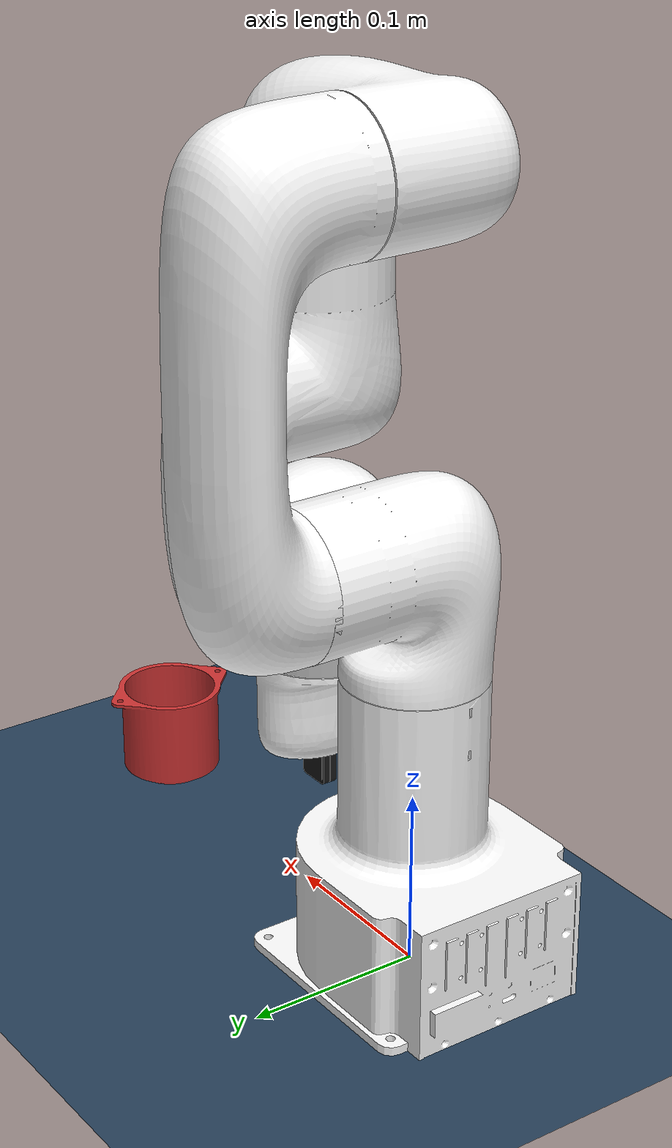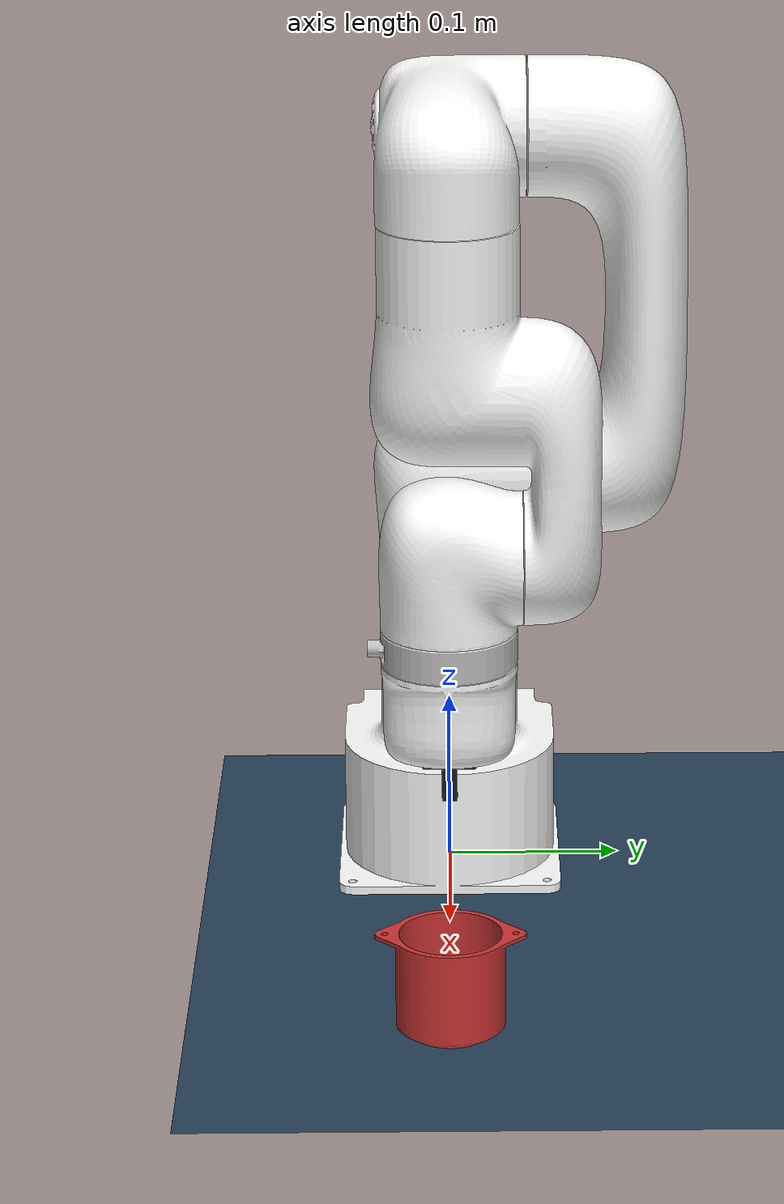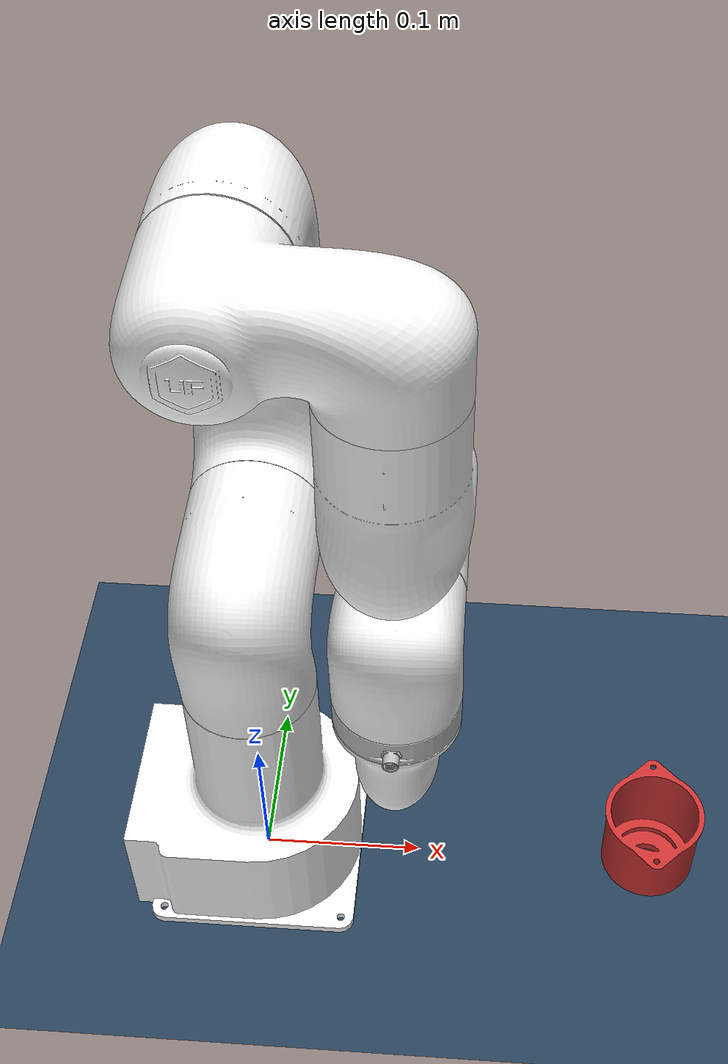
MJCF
<mujoco model="lite6 scene">
  <include file="lite6_gripper_narrow.xml"/>

  <statistic center="0 0 0.3" extent="0.6"/>

  <visual>
    <headlight diffuse="0.6 0.6 0.6" ambient="0.3 0.3 0.3" specular="0 0 0"/>
    <rgba haze="0.15 0.25 0.35 1"/>
    <global azimuth="120" elevation="-20"/>
  </visual>

  <asset>
    <texture type="skybox" builtin="gradient" rgb1="0.3 0.5 0.7" rgb2="0 0 0" width="512" height="3072"/>
    <texture type="2d" name="groundplane" builtin="checker" mark="edge" rgb1="0.2 0.3 0.4" rgb2="0.1 0.2 0.3"
             markrgb="0.8 0.8 0.8" width="300" height="300"/>
    <material name="groundplane" texture="groundplane" texuniform="true" texrepeat="5 5" reflectance="0.2"/>

    <mesh name="object_mesh_visual" file="/home/nikola/code/alignit/alignit/mujoco_menagerie/ufactory_lite6/assets/StatorSimplified.stl" scale="0.001 0.001 0.001" />
    <material name="object_material" rgba="0.8 0.2 0.2 1"/>

    <mesh name="stator_collision_part_000" file="/home/nikola/code/alignit/alignit/mujoco_menagerie/ufactory_lite6/assets/collision_parts/stator/stator_part_000.stl" scale="0.001 0.001 0.001"/>
    <mesh name="stator_collision_part_001" file="/home/nikola/code/alignit/alignit/mujoco_menagerie/ufactory_lite6/assets/collision_parts/stator/stator_part_001.stl" scale="0.001 0.001 0.001"/>
    <mesh name="stator_collision_part_002" file="/home/nikola/code/alignit/alignit/mujoco_menagerie/ufactory_lite6/assets/collision_parts/stator/stator_part_002.stl" scale="0.001 0.001 0.001"/>
    <mesh name="stator_collision_part_003" file="/home/nikola/code/alignit/alignit/mujoco_menagerie/ufactory_lite6/assets/collision_parts/stator/stator_part_003.stl" scale="0.001 0.001 0.001"/>
    <mesh name="stator_collision_part_004" file="/home/nikola/code/alignit/alignit/mujoco_menagerie/ufactory_lite6/assets/collision_parts/stator/stator_part_004.stl" scale="0.001 0.001 0.001"/>
    <mesh name="stator_collision_part_005" file="/home/nikola/code/alignit/alignit/mujoco_menagerie/ufactory_lite6/assets/collision_parts/stator/stator_part_005.stl" scale="0.001 0.001 0.001"/>
    <mesh name="stator_collision_part_006" file="/home/nikola/code/alignit/alignit/mujoco_menagerie/ufactory_lite6/assets/collision_parts/stator/stator_part_006.stl" scale="0.001 0.001 0.001"/>
    <mesh name="stator_collision_part_007" file="/home/nikola/code/alignit/alignit/mujoco_menagerie/ufactory_lite6/assets/collision_parts/stator/stator_part_007.stl" scale="0.001 0.001 0.001"/>
    <mesh name="stator_collision_part_008" file="/home/nikola/code/alignit/alignit/mujoco_menagerie/ufactory_lite6/assets/collision_parts/stator/stator_part_008.stl" scale="0.001 0.001 0.001"/>
    <mesh name="stator_collision_part_009" file="/home/nikola/code/alignit/alignit/mujoco_menagerie/ufactory_lite6/assets/collision_parts/stator/stator_part_009.stl" scale="0.001 0.001 0.001"/>
    <mesh name="stator_collision_part_010" file="/home/nikola/code/alignit/alignit/mujoco_menagerie/ufactory_lite6/assets/collision_parts/stator/stator_part_010.stl" scale="0.001 0.001 0.001"/>
    <mesh name="stator_collision_part_011" file="/home/nikola/code/alignit/alignit/mujoco_menagerie/ufactory_lite6/assets/collision_parts/stator/stator_part_011.stl" scale="0.001 0.001 0.001"/>
    <mesh name="stator_collision_part_012" file="/home/nikola/code/alignit/alignit/mujoco_menagerie/ufactory_lite6/assets/collision_parts/stator/stator_part_012.stl" scale="0.001 0.001 0.001"/>
    <mesh name="stator_collision_part_013" file="/home/nikola/code/alignit/alignit/mujoco_menagerie/ufactory_lite6/assets/collision_parts/stator/stator_part_013.stl" scale="0.001 0.001 0.001"/>
    <mesh name="stator_collision_part_014" file="/home/nikola/code/alignit/alignit/mujoco_menagerie/ufactory_lite6/assets/collision_parts/stator/stator_part_014.stl" scale="0.001 0.001 0.001"/>
    <mesh name="stator_collision_part_015" file="/home/nikola/code/alignit/alignit/mujoco_menagerie/ufactory_lite6/assets/collision_parts/stator/stator_part_015.stl" scale="0.001 0.001 0.001"/>
    <mesh name="stator_collision_part_016" file="/home/nikola/code/alignit/alignit/mujoco_menagerie/ufactory_lite6/assets/collision_parts/stator/stator_part_016.stl" scale="0.001 0.001 0.001"/>
    <mesh name="stator_collision_part_017" file="/home/nikola/code/alignit/alignit/mujoco_menagerie/ufactory_lite6/assets/collision_parts/stator/stator_part_017.stl" scale="0.001 0.001 0.001"/>
    <mesh name="stator_collision_part_018" file="/home/nikola/code/alignit/alignit/mujoco_menagerie/ufactory_lite6/assets/collision_parts/stator/stator_part_018.stl" scale="0.001 0.001 0.001"/>
    <mesh name="stator_collision_part_019" file="/home/nikola/code/alignit/alignit/mujoco_menagerie/ufactory_lite6/assets/collision_parts/stator/stator_part_019.stl" scale="0.001 0.001 0.001"/>
    <mesh name="stator_collision_part_020" file="/home/nikola/code/alignit/alignit/mujoco_menagerie/ufactory_lite6/assets/collision_parts/stator/stator_part_020.stl" scale="0.001 0.001 0.001"/>
    <mesh name="stator_collision_part_021" file="/home/nikola/code/alignit/alignit/mujoco_menagerie/ufactory_lite6/assets/collision_parts/stator/stator_part_021.stl" scale="0.001 0.001 0.001"/>
    <mesh name="stator_collision_part_022" file="/home/nikola/code/alignit/alignit/mujoco_menagerie/ufactory_lite6/assets/collision_parts/stator/stator_part_022.stl" scale="0.001 0.001 0.001"/>
    <mesh name="stator_collision_part_023" file="/home/nikola/code/alignit/alignit/mujoco_menagerie/ufactory_lite6/assets/collision_parts/stator/stator_part_023.stl" scale="0.001 0.001 0.001"/>
    <mesh name="stator_collision_part_024" file="/home/nikola/code/alignit/alignit/mujoco_menagerie/ufactory_lite6/assets/collision_parts/stator/stator_part_024.stl" scale="0.001 0.001 0.001"/>
    <mesh name="stator_collision_part_025" file="/home/nikola/code/alignit/alignit/mujoco_menagerie/ufactory_lite6/assets/collision_parts/stator/stator_part_025.stl" scale="0.001 0.001 0.001"/>
    <mesh name="stator_collision_part_026" file="/home/nikola/code/alignit/alignit/mujoco_menagerie/ufactory_lite6/assets/collision_parts/stator/stator_part_026.stl" scale="0.001 0.001 0.001"/>
    <mesh name="stator_collision_part_027" file="/home/nikola/code/alignit/alignit/mujoco_menagerie/ufactory_lite6/assets/collision_parts/stator/stator_part_027.stl" scale="0.001 0.001 0.001"/>
    <mesh name="stator_collision_part_028" file="/home/nikola/code/alignit/alignit/mujoco_menagerie/ufactory_lite6/assets/collision_parts/stator/stator_part_028.stl" scale="0.001 0.001 0.001"/>
    <mesh name="stator_collision_part_029" file="/home/nikola/code/alignit/alignit/mujoco_menagerie/ufactory_lite6/assets/collision_parts/stator/stator_part_029.stl" scale="0.001 0.001 0.001"/>
    <mesh name="stator_collision_part_030" file="/home/nikola/code/alignit/alignit/mujoco_menagerie/ufactory_lite6/assets/collision_parts/stator/stator_part_030.stl" scale="0.001 0.001 0.001"/>
    <mesh name="stator_collision_part_031" file="/home/nikola/code/alignit/alignit/mujoco_menagerie/ufactory_lite6/assets/collision_parts/stator/stator_part_031.stl" scale="0.001 0.001 0.001"/>
    <mesh name="stator_collision_part_032" file="/home/nikola/code/alignit/alignit/mujoco_menagerie/ufactory_lite6/assets/collision_parts/stator/stator_part_032.stl" scale="0.001 0.001 0.001"/>
    <mesh name="stator_collision_part_033" file="/home/nikola/code/alignit/alignit/mujoco_menagerie/ufactory_lite6/assets/collision_parts/stator/stator_part_033.stl" scale="0.001 0.001 0.001"/>
    <mesh name="stator_collision_part_034" file="/home/nikola/code/alignit/alignit/mujoco_menagerie/ufactory_lite6/assets/collision_parts/stator/stator_part_034.stl" scale="0.001 0.001 0.001"/>
    <mesh name="stator_collision_part_035" file="/home/nikola/code/alignit/alignit/mujoco_menagerie/ufactory_lite6/assets/collision_parts/stator/stator_part_035.stl" scale="0.001 0.001 0.001"/>
    <mesh name="stator_collision_part_036" file="/home/nikola/code/alignit/alignit/mujoco_menagerie/ufactory_lite6/assets/collision_parts/stator/stator_part_036.stl" scale="0.001 0.001 0.001"/>
    <mesh name="stator_collision_part_037" file="/home/nikola/code/alignit/alignit/mujoco_menagerie/ufactory_lite6/assets/collision_parts/stator/stator_part_037.stl" scale="0.001 0.001 0.001"/>
    <mesh name="stator_collision_part_038" file="/home/nikola/code/alignit/alignit/mujoco_menagerie/ufactory_lite6/assets/collision_parts/stator/stator_part_038.stl" scale="0.001 0.001 0.001"/>
    <mesh name="stator_collision_part_039" file="/home/nikola/code/alignit/alignit/mujoco_menagerie/ufactory_lite6/assets/collision_parts/stator/stator_part_039.stl" scale="0.001 0.001 0.001"/>
    <mesh name="stator_collision_part_040" file="/home/nikola/code/alignit/alignit/mujoco_menagerie/ufactory_lite6/assets/collision_parts/stator/stator_part_040.stl" scale="0.001 0.001 0.001"/>
    <mesh name="stator_collision_part_041" file="/home/nikola/code/alignit/alignit/mujoco_menagerie/ufactory_lite6/assets/collision_parts/stator/stator_part_041.stl" scale="0.001 0.001 0.001"/>
    <mesh name="stator_collision_part_042" file="/home/nikola/code/alignit/alignit/mujoco_menagerie/ufactory_lite6/assets/collision_parts/stator/stator_part_042.stl" scale="0.001 0.001 0.001"/>
    <mesh name="stator_collision_part_043" file="/home/nikola/code/alignit/alignit/mujoco_menagerie/ufactory_lite6/assets/collision_parts/stator/stator_part_043.stl" scale="0.001 0.001 0.001"/>
    <mesh name="stator_collision_part_044" file="/home/nikola/code/alignit/alignit/mujoco_menagerie/ufactory_lite6/assets/collision_parts/stator/stator_part_044.stl" scale="0.001 0.001 0.001"/>
    <mesh name="stator_collision_part_045" file="/home/nikola/code/alignit/alignit/mujoco_menagerie/ufactory_lite6/assets/collision_parts/stator/stator_part_045.stl" scale="0.001 0.001 0.001"/>
    <mesh name="stator_collision_part_046" file="/home/nikola/code/alignit/alignit/mujoco_menagerie/ufactory_lite6/assets/collision_parts/stator/stator_part_046.stl" scale="0.001 0.001 0.001"/>
    <mesh name="stator_collision_part_047" file="/home/nikola/code/alignit/alignit/mujoco_menagerie/ufactory_lite6/assets/collision_parts/stator/stator_part_047.stl" scale="0.001 0.001 0.001"/>
    <mesh name="stator_collision_part_048" file="/home/nikola/code/alignit/alignit/mujoco_menagerie/ufactory_lite6/assets/collision_parts/stator/stator_part_048.stl" scale="0.001 0.001 0.001"/>
    <mesh name="stator_collision_part_049" file="/home/nikola/code/alignit/alignit/mujoco_menagerie/ufactory_lite6/assets/collision_parts/stator/stator_part_049.stl" scale="0.001 0.001 0.001"/>
    <mesh name="stator_collision_part_050" file="/home/nikola/code/alignit/alignit/mujoco_menagerie/ufactory_lite6/assets/collision_parts/stator/stator_part_050.stl" scale="0.001 0.001 0.001"/>
    <mesh name="stator_collision_part_051" file="/home/nikola/code/alignit/alignit/mujoco_menagerie/ufactory_lite6/assets/collision_parts/stator/stator_part_051.stl" scale="0.001 0.001 0.001"/>
    <mesh name="stator_collision_part_052" file="/home/nikola/code/alignit/alignit/mujoco_menagerie/ufactory_lite6/assets/collision_parts/stator/stator_part_052.stl" scale="0.001 0.001 0.001"/>
    <mesh name="stator_collision_part_053" file="/home/nikola/code/alignit/alignit/mujoco_menagerie/ufactory_lite6/assets/collision_parts/stator/stator_part_053.stl" scale="0.001 0.001 0.001"/>
    <mesh name="stator_collision_part_054" file="/home/nikola/code/alignit/alignit/mujoco_menagerie/ufactory_lite6/assets/collision_parts/stator/stator_part_054.stl" scale="0.001 0.001 0.001"/>
    <mesh name="stator_collision_part_055" file="/home/nikola/code/alignit/alignit/mujoco_menagerie/ufactory_lite6/assets/collision_parts/stator/stator_part_055.stl" scale="0.001 0.001 0.001"/>
    <mesh name="stator_collision_part_056" file="/home/nikola/code/alignit/alignit/mujoco_menagerie/ufactory_lite6/assets/collision_parts/stator/stator_part_056.stl" scale="0.001 0.001 0.001"/>
    <mesh name="stator_collision_part_057" file="/home/nikola/code/alignit/alignit/mujoco_menagerie/ufactory_lite6/assets/collision_parts/stator/stator_part_057.stl" scale="0.001 0.001 0.001"/>
    <mesh name="stator_collision_part_058" file="/home/nikola/code/alignit/alignit/mujoco_menagerie/ufactory_lite6/assets/collision_parts/stator/stator_part_058.stl" scale="0.001 0.001 0.001"/>
    <mesh name="stator_collision_part_059" file="/home/nikola/code/alignit/alignit/mujoco_menagerie/ufactory_lite6/assets/collision_parts/stator/stator_part_059.stl" scale="0.001 0.001 0.001"/>
    <mesh name="stator_collision_part_060" file="/home/nikola/code/alignit/alignit/mujoco_menagerie/ufactory_lite6/assets/collision_parts/stator/stator_part_060.stl" scale="0.001 0.001 0.001"/>
    <mesh name="stator_collision_part_061" file="/home/nikola/code/alignit/alignit/mujoco_menagerie/ufactory_lite6/assets/collision_parts/stator/stator_part_061.stl" scale="0.001 0.001 0.001"/>
    <mesh name="stator_collision_part_062" file="/home/nikola/code/alignit/alignit/mujoco_menagerie/ufactory_lite6/assets/collision_parts/stator/stator_part_062.stl" scale="0.001 0.001 0.001"/>
    <mesh name="stator_collision_part_063" file="/home/nikola/code/alignit/alignit/mujoco_menagerie/ufactory_lite6/assets/collision_parts/stator/stator_part_063.stl" scale="0.001 0.001 0.001"/>
    <mesh name="stator_collision_part_064" file="/home/nikola/code/alignit/alignit/mujoco_menagerie/ufactory_lite6/assets/collision_parts/stator/stator_part_064.stl" scale="0.001 0.001 0.001"/>
    <mesh name="stator_collision_part_065" file="/home/nikola/code/alignit/alignit/mujoco_menagerie/ufactory_lite6/assets/collision_parts/stator/stator_part_065.stl" scale="0.001 0.001 0.001"/>
    <mesh name="stator_collision_part_066" file="/home/nikola/code/alignit/alignit/mujoco_menagerie/ufactory_lite6/assets/collision_parts/stator/stator_part_066.stl" scale="0.001 0.001 0.001"/>
    <mesh name="stator_collision_part_067" file="/home/nikola/code/alignit/alignit/mujoco_menagerie/ufactory_lite6/assets/collision_parts/stator/stator_part_067.stl" scale="0.001 0.001 0.001"/>
    <mesh name="stator_collision_part_068" file="/home/nikola/code/alignit/alignit/mujoco_menagerie/ufactory_lite6/assets/collision_parts/stator/stator_part_068.stl" scale="0.001 0.001 0.001"/>
    <mesh name="stator_collision_part_069" file="/home/nikola/code/alignit/alignit/mujoco_menagerie/ufactory_lite6/assets/collision_parts/stator/stator_part_069.stl" scale="0.001 0.001 0.001"/>
    <mesh name="stator_collision_part_070" file="/home/nikola/code/alignit/alignit/mujoco_menagerie/ufactory_lite6/assets/collision_parts/stator/stator_part_070.stl" scale="0.001 0.001 0.001"/>
    <mesh name="stator_collision_part_071" file="/home/nikola/code/alignit/alignit/mujoco_menagerie/ufactory_lite6/assets/collision_parts/stator/stator_part_071.stl" scale="0.001 0.001 0.001"/>
    <mesh name="stator_collision_part_072" file="/home/nikola/code/alignit/alignit/mujoco_menagerie/ufactory_lite6/assets/collision_parts/stator/stator_part_072.stl" scale="0.001 0.001 0.001"/>
    <mesh name="stator_collision_part_073" file="/home/nikola/code/alignit/alignit/mujoco_menagerie/ufactory_lite6/assets/collision_parts/stator/stator_part_073.stl" scale="0.001 0.001 0.001"/>
    <mesh name="stator_collision_part_074" file="/home/nikola/code/alignit/alignit/mujoco_menagerie/ufactory_lite6/assets/collision_parts/stator/stator_part_074.stl" scale="0.001 0.001 0.001"/>
    <mesh name="stator_collision_part_075" file="/home/nikola/code/alignit/alignit/mujoco_menagerie/ufactory_lite6/assets/collision_parts/stator/stator_part_075.stl" scale="0.001 0.001 0.001"/>
    <mesh name="stator_collision_part_076" file="/home/nikola/code/alignit/alignit/mujoco_menagerie/ufactory_lite6/assets/collision_parts/stator/stator_part_076.stl" scale="0.001 0.001 0.001"/>
    <mesh name="stator_collision_part_077" file="/home/nikola/code/alignit/alignit/mujoco_menagerie/ufactory_lite6/assets/collision_parts/stator/stator_part_077.stl" scale="0.001 0.001 0.001"/>

  </asset>

  <worldbody>
    <light pos="0 0 1.5" dir="0 0 -1" directional="true"/>
    <geom name="floor" size="0 0 0.05" type="plane" material="groundplane"/>

    <body name="pickup_object" pos="0.250 0 0.06" euler="3.14 0 0">
      <joint type="free"/>
      <inertial pos="0 0 0" mass="0.5" diaginertia="0.001 0.001 0.001"/>

      <geom name="object_visual" type="mesh" mesh="object_mesh_visual" material="object_material"
            contype="0" conaffinity="0" group="2"/>

      <geom name="object_collision_part_000" type="mesh" mesh="stator_collision_part_000"
            contype="1" conaffinity="1" group="3" solimp="0.9 0.95 0.001" solref="0.02 0"
            friction="0.7 0.3 0.1" margin="0.001" mass="0"/>
      <geom name="object_collision_part_001" type="mesh" mesh="stator_collision_part_001"
            contype="1" conaffinity="1" group="3" solimp="0.9 0.95 0.001" solref="0.02 0"
            friction="0.7 0.3 0.1" margin="0.001" mass="0"/>
      <geom name="object_collision_part_002" type="mesh" mesh="stator_collision_part_002"
            contype="1" conaffinity="1" group="3" solimp="0.9 0.95 0.001" solref="0.02 0"
            friction="0.7 0.3 0.1" margin="0.001" mass="0"/>
      <geom name="object_collision_part_003" type="mesh" mesh="stator_collision_part_003"
            contype="1" conaffinity="1" group="3" solimp="0.9 0.95 0.001" solref="0.02 0"
            friction="0.7 0.3 0.1" margin="0.001" mass="0"/>
      <geom name="object_collision_part_004" type="mesh" mesh="stator_collision_part_004"
            contype="1" conaffinity="1" group="3" solimp="0.9 0.95 0.001" solref="0.02 0"
            friction="0.7 0.3 0.1" margin="0.001" mass="0"/>
      <geom name="object_collision_part_005" type="mesh" mesh="stator_collision_part_005"
            contype="1" conaffinity="1" group="3" solimp="0.9 0.95 0.001" solref="0.02 0"
            friction="0.7 0.3 0.1" margin="0.001" mass="0"/>
      <geom name="object_collision_part_006" type="mesh" mesh="stator_collision_part_006"
            contype="1" conaffinity="1" group="3" solimp="0.9 0.95 0.001" solref="0.02 0"
            friction="0.7 0.3 0.1" margin="0.001" mass="0"/>
      <geom name="object_collision_part_007" type="mesh" mesh="stator_collision_part_007"
            contype="1" conaffinity="1" group="3" solimp="0.9 0.95 0.001" solref="0.02 0"
            friction="0.7 0.3 0.1" margin="0.001" mass="0"/>
      <geom name="object_collision_part_008" type="mesh" mesh="stator_collision_part_008"
            contype="1" conaffinity="1" group="3" solimp="0.9 0.95 0.001" solref="0.02 0"
            friction="0.7 0.3 0.1" margin="0.001" mass="0"/>
      <geom name="object_collision_part_009" type="mesh" mesh="stator_collision_part_009"
            contype="1" conaffinity="1" group="3" solimp="0.9 0.95 0.001" solref="0.02 0"
            friction="0.7 0.3 0.1" margin="0.001" mass="0"/>
      <geom name="object_collision_part_010" type="mesh" mesh="stator_collision_part_010"
            contype="1" conaffinity="1" group="3" solimp="0.9 0.95 0.001" solref="0.02 0"
            friction="0.7 0.3 0.1" margin="0.001" mass="0"/>
      <geom name="object_collision_part_011" type="mesh" mesh="stator_collision_part_011"
            contype="1" conaffinity="1" group="3" solimp="0.9 0.95 0.001" solref="0.02 0"
            friction="0.7 0.3 0.1" margin="0.001" mass="0"/>
      <geom name="object_collision_part_012" type="mesh" mesh="stator_collision_part_012"
            contype="1" conaffinity="1" group="3" solimp="0.9 0.95 0.001" solref="0.02 0"
            friction="0.7 0.3 0.1" margin="0.001" mass="0"/>
      <geom name="object_collision_part_013" type="mesh" mesh="stator_collision_part_013"
            contype="1" conaffinity="1" group="3" solimp="0.9 0.95 0.001" solref="0.02 0"
            friction="0.7 0.3 0.1" margin="0.001" mass="0"/>
      <geom name="object_collision_part_014" type="mesh" mesh="stator_collision_part_014"
            contype="1" conaffinity="1" group="3" solimp="0.9 0.95 0.001" solref="0.02 0"
            friction="0.7 0.3 0.1" margin="0.001" mass="0"/>
      <geom name="object_collision_part_015" type="mesh" mesh="stator_collision_part_015"
            contype="1" conaffinity="1" group="3" solimp="0.9 0.95 0.001" solref="0.02 0"
            friction="0.7 0.3 0.1" margin="0.001" mass="0"/>
      <geom name="object_collision_part_016" type="mesh" mesh="stator_collision_part_016"
            contype="1" conaffinity="1" group="3" solimp="0.9 0.95 0.001" solref="0.02 0"
            friction="0.7 0.3 0.1" margin="0.001" mass="0"/>
      <geom name="object_collision_part_017" type="mesh" mesh="stator_collision_part_017"
            contype="1" conaffinity="1" group="3" solimp="0.9 0.95 0.001" solref="0.02 0"
            friction="0.7 0.3 0.1" margin="0.001" mass="0"/>
      <geom name="object_collision_part_018" type="mesh" mesh="stator_collision_part_018"
            contype="1" conaffinity="1" group="3" solimp="0.9 0.95 0.001" solref="0.02 0"
            friction="0.7 0.3 0.1" margin="0.001" mass="0"/>
      <geom name="object_collision_part_019" type="mesh" mesh="stator_collision_part_019"
            contype="1" conaffinity="1" group="3" solimp="0.9 0.95 0.001" solref="0.02 0"
            friction="0.7 0.3 0.1" margin="0.001" mass="0"/>
      <geom name="object_collision_part_020" type="mesh" mesh="stator_collision_part_020"
            contype="1" conaffinity="1" group="3" solimp="0.9 0.95 0.001" solref="0.02 0"
            friction="0.7 0.3 0.1" margin="0.001" mass="0"/>
      <geom name="object_collision_part_021" type="mesh" mesh="stator_collision_part_021"
            contype="1" conaffinity="1" group="3" solimp="0.9 0.95 0.001" solref="0.02 0"
            friction="0.7 0.3 0.1" margin="0.001" mass="0"/>
      <geom name="object_collision_part_022" type="mesh" mesh="stator_collision_part_022"
            contype="1" conaffinity="1" group="3" solimp="0.9 0.95 0.001" solref="0.02 0"
            friction="0.7 0.3 0.1" margin="0.001" mass="0"/>
      <geom name="object_collision_part_023" type="mesh" mesh="stator_collision_part_023"
            contype="1" conaffinity="1" group="3" solimp="0.9 0.95 0.001" solref="0.02 0"
            friction="0.7 0.3 0.1" margin="0.001" mass="0"/>
      <geom name="object_collision_part_024" type="mesh" mesh="stator_collision_part_024"
            contype="1" conaffinity="1" group="3" solimp="0.9 0.95 0.001" solref="0.02 0"
            friction="0.7 0.3 0.1" margin="0.001" mass="0"/>
      <geom name="object_collision_part_025" type="mesh" mesh="stator_collision_part_025"
            contype="1" conaffinity="1" group="3" solimp="0.9 0.95 0.001" solref="0.02 0"
            friction="0.7 0.3 0.1" margin="0.001" mass="0"/>
      <geom name="object_collision_part_026" type="mesh" mesh="stator_collision_part_026"
            contype="1" conaffinity="1" group="3" solimp="0.9 0.95 0.001" solref="0.02 0"
            friction="0.7 0.3 0.1" margin="0.001" mass="0"/>
      <geom name="object_collision_part_027" type="mesh" mesh="stator_collision_part_027"
            contype="1" conaffinity="1" group="3" solimp="0.9 0.95 0.001" solref="0.02 0"
            friction="0.7 0.3 0.1" margin="0.001" mass="0"/>
      <geom name="object_collision_part_028" type="mesh" mesh="stator_collision_part_028"
            contype="1" conaffinity="1" group="3" solimp="0.9 0.95 0.001" solref="0.02 0"
            friction="0.7 0.3 0.1" margin="0.001" mass="0"/>
      <geom name="object_collision_part_029" type="mesh" mesh="stator_collision_part_029"
            contype="1" conaffinity="1" group="3" solimp="0.9 0.95 0.001" solref="0.02 0"
            friction="0.7 0.3 0.1" margin="0.001" mass="0"/>
      <geom name="object_collision_part_030" type="mesh" mesh="stator_collision_part_030"
            contype="1" conaffinity="1" group="3" solimp="0.9 0.95 0.001" solref="0.02 0"
            friction="0.7 0.3 0.1" margin="0.001" mass="0"/>
      <geom name="object_collision_part_031" type="mesh" mesh="stator_collision_part_031"
            contype="1" conaffinity="1" group="3" solimp="0.9 0.95 0.001" solref="0.02 0"
            friction="0.7 0.3 0.1" margin="0.001" mass="0"/>
      <geom name="object_collision_part_032" type="mesh" mesh="stator_collision_part_032"
            contype="1" conaffinity="1" group="3" solimp="0.9 0.95 0.001" solref="0.02 0"
            friction="0.7 0.3 0.1" margin="0.001" mass="0"/>
      <geom name="object_collision_part_033" type="mesh" mesh="stator_collision_part_033"
            contype="1" conaffinity="1" group="3" solimp="0.9 0.95 0.001" solref="0.02 0"
            friction="0.7 0.3 0.1" margin="0.001" mass="0"/>
      <geom name="object_collision_part_034" type="mesh" mesh="stator_collision_part_034"
            contype="1" conaffinity="1" group="3" solimp="0.9 0.95 0.001" solref="0.02 0"
            friction="0.7 0.3 0.1" margin="0.001" mass="0"/>
      <geom name="object_collision_part_035" type="mesh" mesh="stator_collision_part_035"
            contype="1" conaffinity="1" group="3" solimp="0.9 0.95 0.001" solref="0.02 0"
            friction="0.7 0.3 0.1" margin="0.001" mass="0"/>
      <geom name="object_collision_part_036" type="mesh" mesh="stator_collision_part_036"
            contype="1" conaffinity="1" group="3" solimp="0.9 0.95 0.001" solref="0.02 0"
            friction="0.7 0.3 0.1" margin="0.001" mass="0"/>
      <geom name="object_collision_part_037" type="mesh" mesh="stator_collision_part_037"
            contype="1" conaffinity="1" group="3" solimp="0.9 0.95 0.001" solref="0.02 0"
            friction="0.7 0.3 0.1" margin="0.001" mass="0"/>
      <geom name="object_collision_part_038" type="mesh" mesh="stator_collision_part_038"
            contype="1" conaffinity="1" group="3" solimp="0.9 0.95 0.001" solref="0.02 0"
            friction="0.7 0.3 0.1" margin="0.001" mass="0"/>
      <geom name="object_collision_part_039" type="mesh" mesh="stator_collision_part_039"
            contype="1" conaffinity="1" group="3" solimp="0.9 0.95 0.001" solref="0.02 0"
            friction="0.7 0.3 0.1" margin="0.001" mass="0"/>
      <geom name="object_collision_part_040" type="mesh" mesh="stator_collision_part_040"
            contype="1" conaffinity="1" group="3" solimp="0.9 0.95 0.001" solref="0.02 0"
            friction="0.7 0.3 0.1" margin="0.001" mass="0"/>
      <geom name="object_collision_part_041" type="mesh" mesh="stator_collision_part_041"
            contype="1" conaffinity="1" group="3" solimp="0.9 0.95 0.001" solref="0.02 0"
            friction="0.7 0.3 0.1" margin="0.001" mass="0"/>
      <geom name="object_collision_part_042" type="mesh" mesh="stator_collision_part_042"
            contype="1" conaffinity="1" group="3" solimp="0.9 0.95 0.001" solref="0.02 0"
            friction="0.7 0.3 0.1" margin="0.001" mass="0"/>
      <geom name="object_collision_part_043" type="mesh" mesh="stator_collision_part_043"
            contype="1" conaffinity="1" group="3" solimp="0.9 0.95 0.001" solref="0.02 0"
            friction="0.7 0.3 0.1" margin="0.001" mass="0"/>
      <geom name="object_collision_part_044" type="mesh" mesh="stator_collision_part_044"
            contype="1" conaffinity="1" group="3" solimp="0.9 0.95 0.001" solref="0.02 0"
            friction="0.7 0.3 0.1" margin="0.001" mass="0"/>
      <geom name="object_collision_part_045" type="mesh" mesh="stator_collision_part_045"
            contype="1" conaffinity="1" group="3" solimp="0.9 0.95 0.001" solref="0.02 0"
            friction="0.7 0.3 0.1" margin="0.001" mass="0"/>
      <geom name="object_collision_part_046" type="mesh" mesh="stator_collision_part_046"
            contype="1" conaffinity="1" group="3" solimp="0.9 0.95 0.001" solref="0.02 0"
            friction="0.7 0.3 0.1" margin="0.001" mass="0"/>
      <geom name="object_collision_part_047" type="mesh" mesh="stator_collision_part_047"
            contype="1" conaffinity="1" group="3" solimp="0.9 0.95 0.001" solref="0.02 0"
            friction="0.7 0.3 0.1" margin="0.001" mass="0"/>
      <geom name="object_collision_part_048" type="mesh" mesh="stator_collision_part_048"
            contype="1" conaffinity="1" group="3" solimp="0.9 0.95 0.001" solref="0.02 0"
            friction="0.7 0.3 0.1" margin="0.001" mass="0"/>
      <geom name="object_collision_part_049" type="mesh" mesh="stator_collision_part_049"
            contype="1" conaffinity="1" group="3" solimp="0.9 0.95 0.001" solref="0.02 0"
            friction="0.7 0.3 0.1" margin="0.001" mass="0"/>
      <geom name="object_collision_part_050" type="mesh" mesh="stator_collision_part_050"
            contype="1" conaffinity="1" group="3" solimp="0.9 0.95 0.001" solref="0.02 0"
            friction="0.7 0.3 0.1" margin="0.001" mass="0"/>
      <geom name="object_collision_part_051" type="mesh" mesh="stator_collision_part_051"
            contype="1" conaffinity="1" group="3" solimp="0.9 0.95 0.001" solref="0.02 0"
            friction="0.7 0.3 0.1" margin="0.001" mass="0"/>
      <geom name="object_collision_part_052" type="mesh" mesh="stator_collision_part_052"
            contype="1" conaffinity="1" group="3" solimp="0.9 0.95 0.001" solref="0.02 0"
            friction="0.7 0.3 0.1" margin="0.001" mass="0"/>
      <geom name="object_collision_part_053" type="mesh" mesh="stator_collision_part_053"
            contype="1" conaffinity="1" group="3" solimp="0.9 0.95 0.001" solref="0.02 0"
            friction="0.7 0.3 0.1" margin="0.001" mass="0"/>
      <geom name="object_collision_part_054" type="mesh" mesh="stator_collision_part_054"
            contype="1" conaffinity="1" group="3" solimp="0.9 0.95 0.001" solref="0.02 0"
            friction="0.7 0.3 0.1" margin="0.001" mass="0"/>
      <geom name="object_collision_part_055" type="mesh" mesh="stator_collision_part_055"
            contype="1" conaffinity="1" group="3" solimp="0.9 0.95 0.001" solref="0.02 0"
            friction="0.7 0.3 0.1" margin="0.001" mass="0"/>
      <geom name="object_collision_part_056" type="mesh" mesh="stator_collision_part_056"
            contype="1" conaffinity="1" group="3" solimp="0.9 0.95 0.001" solref="0.02 0"
            friction="0.7 0.3 0.1" margin="0.001" mass="0"/>
      <geom name="object_collision_part_057" type="mesh" mesh="stator_collision_part_057"
            contype="1" conaffinity="1" group="3" solimp="0.9 0.95 0.001" solref="0.02 0"
            friction="0.7 0.3 0.1" margin="0.001" mass="0"/>
      <geom name="object_collision_part_058" type="mesh" mesh="stator_collision_part_058"
            contype="1" conaffinity="1" group="3" solimp="0.9 0.95 0.001" solref="0.02 0"
            friction="0.7 0.3 0.1" margin="0.001" mass="0"/>
      <geom name="object_collision_part_059" type="mesh" mesh="stator_collision_part_059"
            contype="1" conaffinity="1" group="3" solimp="0.9 0.95 0.001" solref="0.02 0"
            friction="0.7 0.3 0.1" margin="0.001" mass="0"/>
      <geom name="object_collision_part_060" type="mesh" mesh="stator_collision_part_060"
            contype="1" conaffinity="1" group="3" solimp="0.9 0.95 0.001" solref="0.02 0"
            friction="0.7 0.3 0.1" margin="0.001" mass="0"/>
      <geom name="object_collision_part_061" type="mesh" mesh="stator_collision_part_061"
            contype="1" conaffinity="1" group="3" solimp="0.9 0.95 0.001" solref="0.02 0"
            friction="0.7 0.3 0.1" margin="0.001" mass="0"/>
      <geom name="object_collision_part_062" type="mesh" mesh="stator_collision_part_062"
            contype="1" conaffinity="1" group="3" solimp="0.9 0.95 0.001" solref="0.02 0"
            friction="0.7 0.3 0.1" margin="0.001" mass="0"/>
      <geom name="object_collision_part_063" type="mesh" mesh="stator_collision_part_063"
            contype="1" conaffinity="1" group="3" solimp="0.9 0.95 0.001" solref="0.02 0"
            friction="0.7 0.3 0.1" margin="0.001" mass="0"/>
      <geom name="object_collision_part_064" type="mesh" mesh="stator_collision_part_064"
            contype="1" conaffinity="1" group="3" solimp="0.9 0.95 0.001" solref="0.02 0"
            friction="0.7 0.3 0.1" margin="0.001" mass="0"/>
      <geom name="object_collision_part_065" type="mesh" mesh="stator_collision_part_065"
            contype="1" conaffinity="1" group="3" solimp="0.9 0.95 0.001" solref="0.02 0"
            friction="0.7 0.3 0.1" margin="0.001" mass="0"/>
      <geom name="object_collision_part_066" type="mesh" mesh="stator_collision_part_066"
            contype="1" conaffinity="1" group="3" solimp="0.9 0.95 0.001" solref="0.02 0"
            friction="0.7 0.3 0.1" margin="0.001" mass="0"/>
      <geom name="object_collision_part_067" type="mesh" mesh="stator_collision_part_067"
            contype="1" conaffinity="1" group="3" solimp="0.9 0.95 0.001" solref="0.02 0"
            friction="0.7 0.3 0.1" margin="0.001" mass="0"/>
      <geom name="object_collision_part_068" type="mesh" mesh="stator_collision_part_068"
            contype="1" conaffinity="1" group="3" solimp="0.9 0.95 0.001" solref="0.02 0"
            friction="0.7 0.3 0.1" margin="0.001" mass="0"/>
      <geom name="object_collision_part_069" type="mesh" mesh="stator_collision_part_069"
            contype="1" conaffinity="1" group="3" solimp="0.9 0.95 0.001" solref="0.02 0"
            friction="0.7 0.3 0.1" margin="0.001" mass="0"/>
      <geom name="object_collision_part_070" type="mesh" mesh="stator_collision_part_070"
            contype="1" conaffinity="1" group="3" solimp="0.9 0.95 0.001" solref="0.02 0"
            friction="0.7 0.3 0.1" margin="0.001" mass="0"/>
      <geom name="object_collision_part_071" type="mesh" mesh="stator_collision_part_071"
            contype="1" conaffinity="1" group="3" solimp="0.9 0.95 0.001" solref="0.02 0"
            friction="0.7 0.3 0.1" margin="0.001" mass="0"/>
      <geom name="object_collision_part_072" type="mesh" mesh="stator_collision_part_072"
            contype="1" conaffinity="1" group="3" solimp="0.9 0.95 0.001" solref="0.02 0"
            friction="0.7 0.3 0.1" margin="0.001" mass="0"/>
      <geom name="object_collision_part_073" type="mesh" mesh="stator_collision_part_073"
            contype="1" conaffinity="1" group="3" solimp="0.9 0.95 0.001" solref="0.02 0"
            friction="0.7 0.3 0.1" margin="0.001" mass="0"/>
      <geom name="object_collision_part_074" type="mesh" mesh="stator_collision_part_074"
            contype="1" conaffinity="1" group="3" solimp="0.9 0.95 0.001" solref="0.02 0"
            friction="0.7 0.3 0.1" margin="0.001" mass="0"/>
      <geom name="object_collision_part_075" type="mesh" mesh="stator_collision_part_075"
            contype="1" conaffinity="1" group="3" solimp="0.9 0.95 0.001" solref="0.02 0"
            friction="0.7 0.3 0.1" margin="0.001" mass="0"/>
      <geom name="object_collision_part_076" type="mesh" mesh="stator_collision_part_076"
            contype="1" conaffinity="1" group="3" solimp="0.9 0.95 0.001" solref="0.02 0"
            friction="0.7 0.3 0.1" margin="0.001" mass="0"/>
      <geom name="object_collision_part_077" type="mesh" mesh="stator_collision_part_077"
            contype="1" conaffinity="1" group="3" solimp="0.9 0.95 0.001" solref="0.02 0"
            friction="0.7 0.3 0.1" margin="0.001" mass="0"/>
    </body>
  </worldbody>
</mujoco>

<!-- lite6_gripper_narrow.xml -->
<mujoco model="ufactory_lite6">
  <compiler angle="radian" meshdir="assets" autolimits="true"/>
  <option integrator="implicitfast" cone="elliptic"/>

  <default>
    <default class="lite6">
      <geom type="mesh"/>
      <joint axis="0 0 1" damping="1" armature="0.1"/>
      <position kp="2000" kv="200"/>
      <default class="size1">
        <position forcerange="-50 50"/>
      </default>
      <default class="size2">
        <position forcerange="-32 32"/>
      </default>
      <default class="size3">
        <position forcerange="-20 20"/>
      </default>
      <default class="visual">
        <geom contype="0" conaffinity="0" group="2" material="white"/>
      </default>
      <default class="collision">
        <geom group="3" mass="0" density="0"/>
      </default>
      <site size="0.001" rgba="0.5 0.5 0.5 0.3" group="4"/>
    </default>
  </default>

  <asset>
    <material name="white" rgba="1 1 1 1"/>
    <material name="silver" rgba=".753 .753 .753 1"/>
    <material name="black" rgba=".1 .1 .1 1"/>
    <material name="collision" rgba="1 0 0 0.3"/> <!-- For debugging collisions -->

    <!-- Visual Meshes -->
    <mesh file="visual/link_base.stl"/>
    <mesh file="visual/link1.stl"/>
    <mesh file="visual/link2.stl"/>
    <mesh file="visual/link3.stl"/>
    <mesh file="visual/link4.stl"/>
    <mesh file="visual/link5.stl"/>
    <mesh file="visual/link6.stl"/>
    <mesh file="visual/gripper_lite_body.stl"/>
    <mesh file="visual/gripper_lite_left_finger_narrow.stl"/>
    <mesh file="visual/gripper_lite_right_finger_narrow.stl"/>

    <!-- Collision Meshes (Now including fingers) -->
    <mesh name="link_base_c" file="collision/link_base.stl"/>
    <mesh name="link1_c" file="collision/link1.stl"/>
    <mesh name="link2_c" file="collision/link2.stl"/>
    <mesh name="link3_c" file="collision/link3.stl"/>
    <mesh name="link4_c" file="collision/link4.stl"/>
    <mesh name="link5_c" file="collision/link5.stl"/>
    <mesh name="link6_c" file="collision/link6.stl"/>
    <mesh name="gripper_lite_body_c" file="collision/gripper_lite_body.stl"/>
    <mesh name="gripper_lite_left_finger_narrow_c" file="collision/gripper_lite_left_finger_wide_tip.stl"/>
    <mesh name="gripper_lite_right_finger_narrow_c" file="collision/gripper_lite_right_finger_wide_tip.stl"/>
  </asset>

  <worldbody>
    <body name="link_base" childclass="lite6">
      <inertial pos="-0.00829545 3.26357e-05 0.0631195" mass="1.65394" diaginertia="0 0 0"/>
      <geom class="visual" mesh="link_base"/>
      <geom name="link_base_c" class="collision" mesh="link_base_c"/>
      <body name="link1" pos="0 0 0.2435">
        <inertial pos="-0.00036 0.04195 -0.0025" quat="0.608059 0.792349 -0.0438707 0.0228718" mass="1.411"
          diaginertia="0.00145276 0.00135275 0.000853355"/>
        <joint name="joint1" range="-6.28319 6.28319"/>
        <geom class="visual" mesh="link1"/>
        <geom name="link1_c" class="collision" mesh="link1_c"/>
        <body name="link2" quat="-1 1 1 1">
          <inertial pos="0.179 0 0.0584" quat="0.417561 0.571619 0.569585 0.417693" mass="1.34"
            diaginertia="0.00560971 0.0052152 0.00122018"/>
          <joint name="joint2" range="-2.61799 2.61799"/>
          <geom class="visual" mesh="link2"/>
          <geom name="link2_c" class="collision" mesh="link2_c"/>
          <body name="link3" pos="0.2002 0 0" quat="-2.59734e-06 -0.707105 -0.707108 -2.59735e-06">
            <inertial pos="0.072 -0.0357 -0.001" quat="0.128259 0.662963 -0.167256 0.71837" mass="0.953"
              diaginertia="0.0018521 0.00175546 0.000703807"/>
            <joint name="joint3" range="-0.061087 5.23599"/>
            <geom class="visual" mesh="link3"/>
            <geom name="link3_c" class="collision" mesh="link3_c"/>
            <body name="link4" pos="0.087 -0.22761 0" quat="0.707105 0.707108 0 0">
              <inertial pos="-0.002 -0.0285 -0.0813" quat="0.975248 0.22109 0.00203498 -0.00262178" mass="1.284"
                diaginertia="0.00370503 0.00349091 0.00109586"/>
              <joint name="joint4" range="-6.28319 6.28319"/>
              <geom class="visual" mesh="link4"/>
              <geom name="link4_c" class="collision" mesh="link4_c"/>
              <body name="link5" quat="1 1 0 0">
                <inertial pos="0 0.01 0.0019" quat="0.71423 0.696388 -0.0531933 0.0456997" mass="0.804"
                  diaginertia="0.000567553 0.000529266 0.000507681"/>
                <joint name="joint5" range="-2.1642 2.1642"/>
                <geom class="visual" mesh="link5"/>
                <geom name="link5_c" class="collision" mesh="link5_c"/>
                <body name="link6" pos="0 0.0625 0" quat="1 -1 0 0">
                  <inertial pos="0 -0.00194 -0.0102" quat="-0.0376023 0.704057 0.0446838 0.707738" mass="0.13"
                    diaginertia="0.000148148 8.57757e-05 7.71412e-05"/>
                  <joint name="joint6" range="-6.28319 6.28319"/>
                  <geom class="visual" mesh="link6" material="silver"/>
                  <geom name="link6_c" class="collision" mesh="link6_c"/>
                  <site name="attachment_site"/>
                  <body name="gripper_body" pos="0 0 0" quat="1 0 0 0">
                    <inertial pos="0.0 0.0 0.026" quat="1 0 0 0" mass="0.26"
                      diaginertia="0.00016117 0.000118 0.00014455" />
                    <geom name="gripper_lite_body" class="visual" mesh="gripper_lite_body" material="white"/>
                    <geom name="gripper_lite_body_c" class="collision" mesh="gripper_lite_body_c"/>
                    <camera name="gripper_camera" mode="fixed" pos="0.1 0 -0.02" quat="0.0 0 1 0" fovy="90"/>
                    <body name="gripper_left_finger" pos="0 0 0.054" quat="1 0 0 0">
                      <inertial pos="0.0 -0.005 0.01" quat="1 0 0 0" mass="0.024"
                        diaginertia="1.961e-6 2.274e-6 1.238e-6" />
                      <geom name="gripper_left_finger_visual" mesh="gripper_lite_left_finger_narrow" material="black" group="2"/>
                      <geom name="gripper_left_finger_collision" mesh="gripper_lite_left_finger_narrow_c" class="collision" condim="6" solimp="0.9 0.95 0.001" solref="0.02 1" friction="2 0.5 0.01" pos="0 0.012 0" contype="1" conaffinity="1"/>
                      <joint name="gripper_left_finger" pos="0 0 0" axis="0 1 0" type="slide" limited="true" range="-0.02 0" damping="0.1"/>
                    </body>
                    <body name="gripper_right_finger" pos="0 0 0.054" quat="1 0 0 0">
                      <inertial pos="0.0 0.005 0.01" quat="1 0 0 0" mass="0.024"
                        diaginertia="1.961e-6 2.274e-6 1.238e-6" />
                      <geom name="gripper_right_finger_visual" mesh="gripper_lite_right_finger_narrow" material="black" group="2" pos="0 0 0"/>
                      <geom name="gripper_right_finger_collision" mesh="gripper_lite_right_finger_narrow_c" class="collision" condim="6" solimp="0.9 0.95 0.001" solref="0.02 1" friction="2 0.5 0.01" pos="0 -0.012 0" contype="1" conaffinity="1"/>
                      <joint name="gripper_right_finger" pos="0 0 0" axis="0 1 0" type="slide" limited="true" range="0 0.02" damping="0.1"/>
                    </body>
                    <site name="end_effector" pos="0 0 0.0811"/>
                  </body>
                </body>
              </body>
            </body>
          </body>
        </body>
      </body>
    </body>
  </worldbody>

  <actuator>
    <position joint="joint1" class="size1" ctrlrange="-6.28319 6.28319"/>
    <position joint="joint2" class="size1" ctrlrange="-2.61799 2.61799"/>
    <position joint="joint3" class="size2" ctrlrange="-0.061087 5.23599"/>
    <position joint="joint4" class="size2" ctrlrange="-6.28319 6.28319"/>
    <position joint="joint5" class="size2" ctrlrange="-2.1642 2.1642"/>
    <position joint="joint6" class="size3" ctrlrange="-6.28319 6.28319"/>
    <position name="gripper" joint="gripper_left_finger" ctrlrange="-0.008 0.008" kp="300" kv="200" forcerange="-50 50"/>   </actuator>

  <equality>
    <joint joint1="gripper_left_finger" joint2="gripper_right_finger" polycoef="0 -1 0 0 0" solimp="0.9 0.95 0.001"/>
  </equality>
</mujoco>
